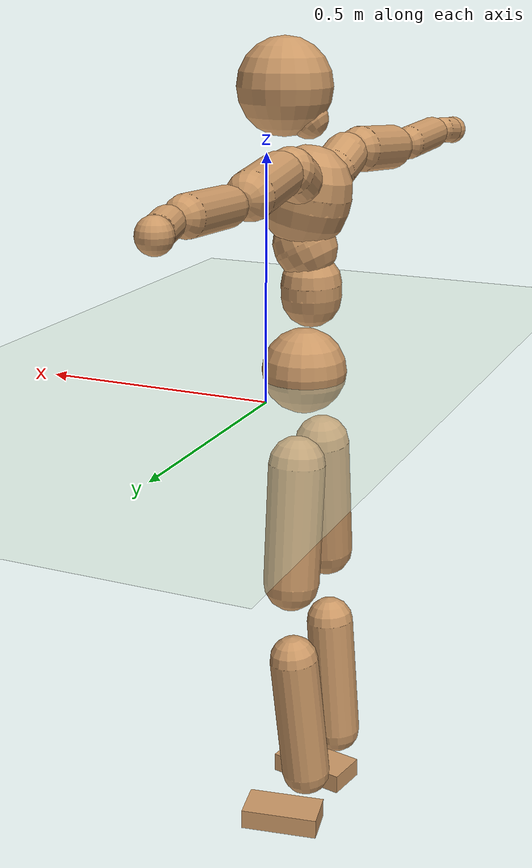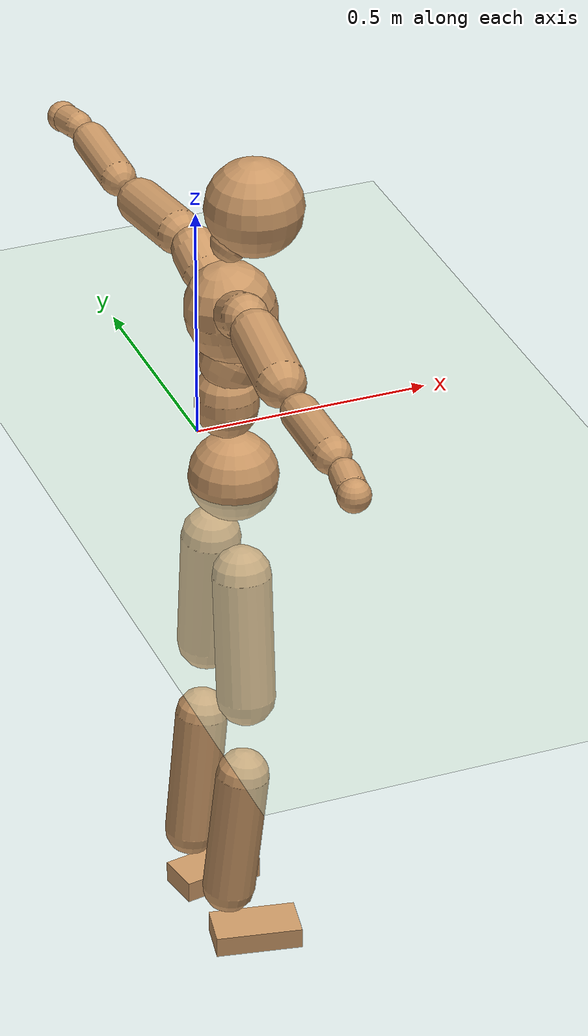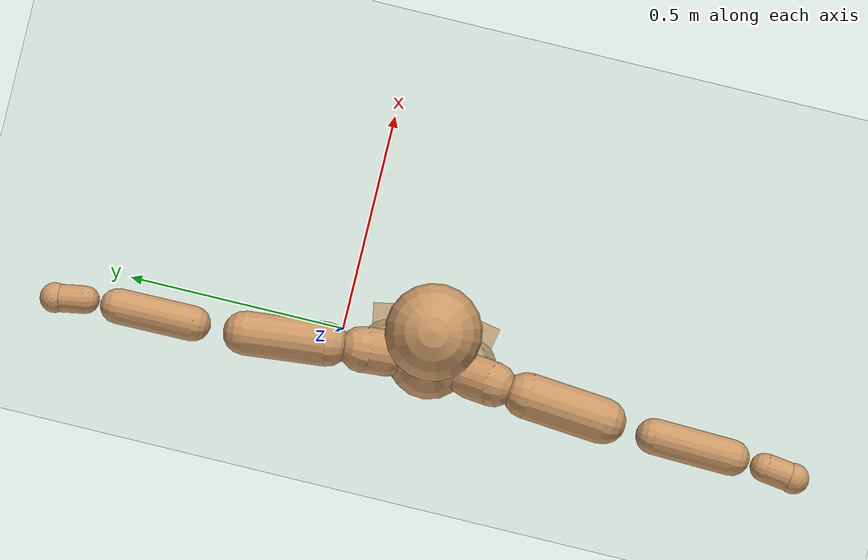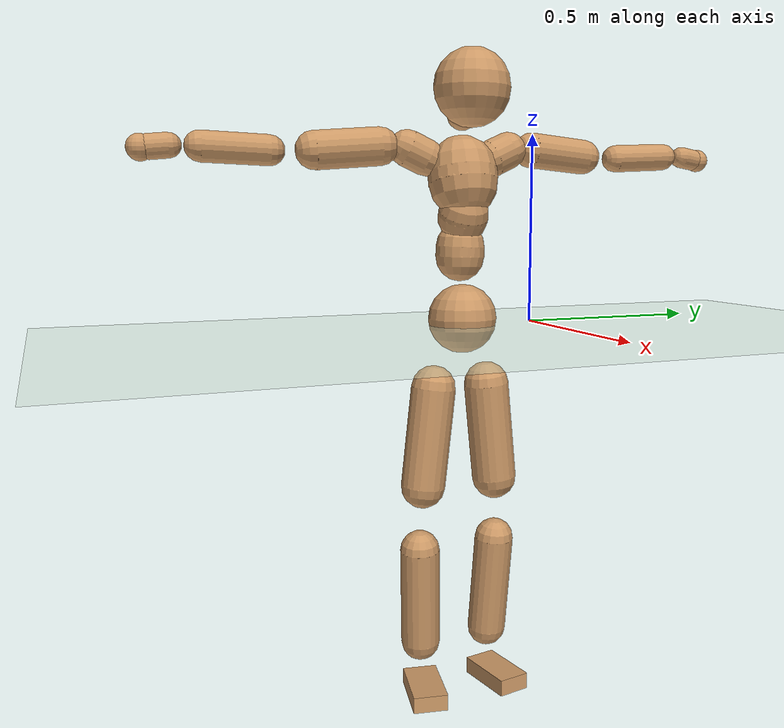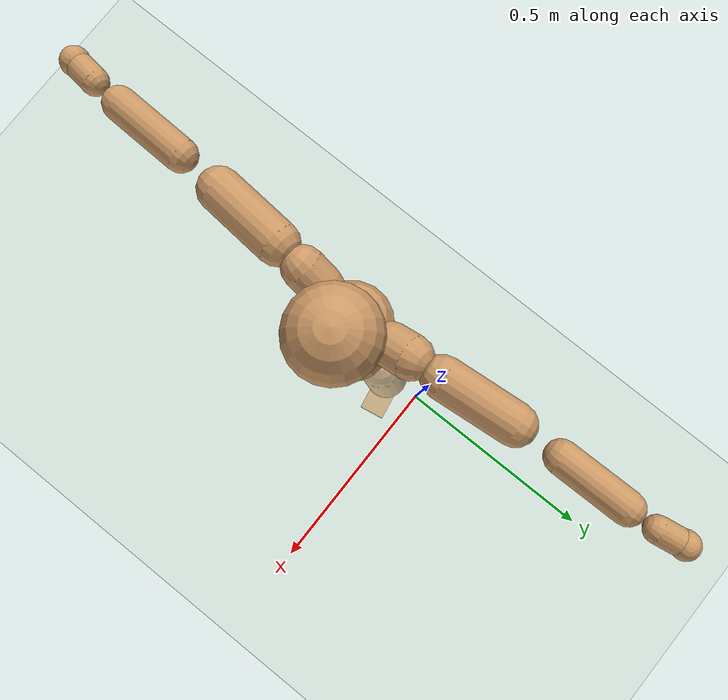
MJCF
<mujoco model="humanoid">
  <compiler coordinate="local" angle="radian"/>
  <default>
    <joint damping="0.0" armature="0.01" stiffness="0.0" limited="true"/>
    <geom conaffinity="1" condim="3" contype="7" margin="0.001" rgba="0.8 0.6 .4 1"/>
  </default>
  <asset>
    <texture type="skybox" builtin="gradient" rgb1=".4 .5 .6" rgb2="0 0 0" width="100" height="100"/>
    <texture builtin="flat" height="1278" mark="cross" markrgb="1 1 1" name="texgeom" random="0.01" rgb1="0.8 0.6 0.4" rgb2="0.8 0.6 0.4" type="cube" width="127"/>
    <texture builtin="checker" height="100" name="texplane" rgb1="0 0 0" rgb2="0.8 0.8 0.8" type="2d" width="100"/>
    <material name="MatPlane" reflectance="0.5" shininess="1" specular="1" texrepeat="60 60" texture="texplane"/>
    <material name="geom" texture="texgeom" texuniform="true"/>
  </asset>
  <worldbody>
    <light cutoff="100" diffuse="1 1 1" dir="-0 0 -1.3" directional="true" exponent="1" pos="0 0 1.3" specular=".1 .1 .1"/>
    <geom conaffinity="1" condim="3" name="floor" pos="0 0 0" rgba="0.8 0.9 0.8 1" size="100 100 .2" type="plane" material="MatPlane"/>
    <body name="Pelvis" pos="-0.0001 -0.2042 0.0146">
      <freejoint name="Pelvis"/>
      <geom type="sphere" contype="1" conaffinity="1" density="500" size="0.0924" pos="0.0000 0.0000 0.0000" name="Pelvis"/>
      <body name="L_Hip" pos="-0.018 0.0717 -0.0968">
        <joint name="L_Hip_x" type="hinge" pos="0 0 0" axis="1 0 0" stiffness="800" damping="80" armature="0.02" range="-180.0000 180.0000"/>
        <joint name="L_Hip_y" type="hinge" pos="0 0 0" axis="0 1 0" stiffness="800" damping="80" armature="0.02" range="-180.0000 180.0000"/>
        <joint name="L_Hip_z" type="hinge" pos="0 0 0" axis="0 0 1" stiffness="800" damping="80" armature="0.02" range="-180.0000 180.0000"/>
        <geom type="capsule" contype="1" conaffinity="1" density="500" fromto="-0.0002 0.0088 -0.0898 -0.0008 0.0352 -0.3591" size="0.0619" name="L_Hip"/>
        <body name="L_Knee" pos="-0.001 0.044 -0.4489">
          <joint name="L_Knee_x" type="hinge" pos="0 0 0" axis="1 0 0" stiffness="800" damping="80" armature="0.02" range="-180.0000 180.0000"/>
          <joint name="L_Knee_y" type="hinge" pos="0 0 0" axis="0 1 0" stiffness="800" damping="80" armature="0.02" range="-180.0000 180.0000"/>
          <joint name="L_Knee_z" type="hinge" pos="0 0 0" axis="0 0 1" stiffness="800" damping="80" armature="0.02" range="-180.0000 180.0000"/>
          <geom type="capsule" contype="1" conaffinity="1" density="500" fromto="-0.0098 -0.0027 -0.0949 -0.0392 -0.0108 -0.3797" size="0.0547" name="L_Knee"/>
          <body name="L_Ankle" pos="-0.0491 -0.0135 -0.4746">
            <joint name="L_Ankle_x" type="hinge" pos="0 0 0" axis="1 0 0" stiffness="800" damping="80" armature="0.02" range="-180.0000 180.0000"/>
            <joint name="L_Ankle_y" type="hinge" pos="0 0 0" axis="0 1 0" stiffness="800" damping="80" armature="0.02" range="-180.0000 180.0000"/>
            <joint name="L_Ankle_z" type="hinge" pos="0 0 0" axis="0 0 1" stiffness="800" damping="80" armature="0.02" range="-180.0000 180.0000"/>
            <geom type="box" contype="1" conaffinity="1" density="500" pos="0.0635 0.0115 -0.0323" size="0.0881 0.0456 0.0232" quat="0.9960 0.0000 0.0000 0.0891" name="L_Ankle"/>
            <body name="L_Toe" pos="0.127 0.0229 -0.0646">
              <joint name="L_Toe_x" type="hinge" pos="0 0 0" axis="1 0 0" stiffness="500" damping="50" armature="0.02" range="-180.0000 180.0000"/>
              <joint name="L_Toe_y" type="hinge" pos="0 0 0" axis="0 1 0" stiffness="500" damping="50" armature="0.02" range="-180.0000 180.0000"/>
              <joint name="L_Toe_z" type="hinge" pos="0 0 0" axis="0 0 1" stiffness="500" damping="50" armature="0.02" range="-180.0000 180.0000"/>
              <geom type="box" contype="1" conaffinity="1" density="500" pos="0.0000 0.0000 0.0318" size="0.0009 0.0023 0.0011" quat="0.9955 0.0000 0.0000 0.0952" name="L_Toe"/>
            </body>
          </body>
        </body>
      </body>
      <body name="R_Hip" pos="-0.0125 -0.0688 -0.0952">
        <joint name="R_Hip_x" type="hinge" pos="0 0 0" axis="1 0 0" stiffness="800" damping="80" armature="0.02" range="-180.0000 180.0000"/>
        <joint name="R_Hip_y" type="hinge" pos="0 0 0" axis="0 1 0" stiffness="800" damping="80" armature="0.02" range="-180.0000 180.0000"/>
        <joint name="R_Hip_z" type="hinge" pos="0 0 0" axis="0 0 1" stiffness="800" damping="80" armature="0.02" range="-180.0000 180.0000"/>
        <geom type="capsule" contype="1" conaffinity="1" density="500" fromto="-0.0009 -0.0103 -0.0914 -0.0038 -0.0410 -0.3655" size="0.0609" name="R_Hip"/>
        <body name="R_Knee" pos="-0.0047 -0.0513 -0.4569">
          <joint name="R_Knee_x" type="hinge" pos="0 0 0" axis="1 0 0" stiffness="800" damping="80" armature="0.02" range="-180.0000 180.0000"/>
          <joint name="R_Knee_y" type="hinge" pos="0 0 0" axis="0 1 0" stiffness="800" damping="80" armature="0.02" range="-180.0000 180.0000"/>
          <joint name="R_Knee_z" type="hinge" pos="0 0 0" axis="0 0 1" stiffness="800" damping="80" armature="0.02" range="-180.0000 180.0000"/>
          <geom type="capsule" contype="1" conaffinity="1" density="500" fromto="-0.0091 0.0037 -0.0949 -0.0365 0.0146 -0.3794" size="0.055" name="R_Knee"/>
          <body name="R_Ankle" pos="-0.0457 0.0183 -0.4743">
            <joint name="R_Ankle_x" type="hinge" pos="0 0 0" axis="1 0 0" stiffness="800" damping="80" armature="0.02" range="-180.0000 180.0000"/>
            <joint name="R_Ankle_y" type="hinge" pos="0 0 0" axis="0 1 0" stiffness="800" damping="80" armature="0.02" range="-180.0000 180.0000"/>
            <joint name="R_Ankle_z" type="hinge" pos="0 0 0" axis="0 0 1" stiffness="800" damping="80" armature="0.02" range="-180.0000 180.0000"/>
            <geom type="box" contype="1" conaffinity="1" density="500" pos="0.0653 -0.0124 -0.0278" size="0.0908 0.0481 0.0226" quat="0.9956 0.0000 0.0000 -0.0933" name="R_Ankle"/>
            <body name="R_Toe" pos="0.1307 -0.0247 -0.0555">
              <joint name="R_Toe_x" type="hinge" pos="0 0 0" axis="1 0 0" stiffness="500" damping="50" armature="0.02" range="-180.0000 180.0000"/>
              <joint name="R_Toe_y" type="hinge" pos="0 0 0" axis="0 1 0" stiffness="500" damping="50" armature="0.02" range="-180.0000 180.0000"/>
              <joint name="R_Toe_z" type="hinge" pos="0 0 0" axis="0 0 1" stiffness="500" damping="50" armature="0.02" range="-180.0000 180.0000"/>
              <geom type="box" contype="1" conaffinity="1" density="500" pos="0.0000 0.0000 0.0303" size="0.0008 0.0023 0.0013" quat="0.9964 0.0000 0.0000 -0.0847" name="R_Toe"/>
            </body>
          </body>
        </body>
      </body>
      <body name="Torso" pos="-0.0147 -0.0031 0.1095">
        <joint name="Torso_x" type="hinge" pos="0 0 0" axis="1 0 0" stiffness="1000" damping="100" armature="0.02" range="-180.0000 180.0000"/>
        <joint name="Torso_y" type="hinge" pos="0 0 0" axis="0 1 0" stiffness="1000" damping="100" armature="0.02" range="-180.0000 180.0000"/>
        <joint name="Torso_z" type="hinge" pos="0 0 0" axis="0 0 1" stiffness="1000" damping="100" armature="0.02" range="-180.0000 180.0000"/>
        <geom type="capsule" contype="1" conaffinity="1" density="500" fromto="0.0010 0.0024 0.0821 0.0007 0.0016 0.0547" size="0.0651" name="Torso"/>
        <body name="Spine" pos="0.0016 0.004 0.1369">
          <joint name="Spine_x" type="hinge" pos="0 0 0" axis="1 0 0" stiffness="1000" damping="100" armature="0.02" range="-180.0000 180.0000"/>
          <joint name="Spine_y" type="hinge" pos="0 0 0" axis="0 1 0" stiffness="1000" damping="100" armature="0.02" range="-180.0000 180.0000"/>
          <joint name="Spine_z" type="hinge" pos="0 0 0" axis="0 0 1" stiffness="1000" damping="100" armature="0.02" range="-180.0000 180.0000"/>
          <geom type="capsule" contype="1" conaffinity="1" density="500" fromto="0.0162 0.0008 0.0311 0.0108 0.0005 0.0207" size="0.0666" name="Spine"/>
          <body name="Chest" pos="0.027 0.0014 0.0518">
            <joint name="Chest_x" type="hinge" pos="0 0 0" axis="1 0 0" stiffness="1000" damping="100" armature="0.02" range="-180.0000 180.0000"/>
            <joint name="Chest_y" type="hinge" pos="0 0 0" axis="0 1 0" stiffness="1000" damping="100" armature="0.02" range="-180.0000 180.0000"/>
            <joint name="Chest_z" type="hinge" pos="0 0 0" axis="0 0 1" stiffness="1000" damping="100" armature="0.02" range="-180.0000 180.0000"/>
            <geom type="capsule" contype="1" conaffinity="1" density="500" fromto="-0.0204 -0.0011 0.0894 -0.0136 -0.0007 0.0596" size="0.0922" name="Chest"/>
            <body name="Neck" pos="-0.0306 -0.0035 0.2164">
              <joint name="Neck_x" type="hinge" pos="0 0 0" axis="1 0 0" stiffness="500" damping="50" armature="0.02" range="-180.0000 180.0000"/>
              <joint name="Neck_y" type="hinge" pos="0 0 0" axis="0 1 0" stiffness="500" damping="50" armature="0.02" range="-180.0000 180.0000"/>
              <joint name="Neck_z" type="hinge" pos="0 0 0" axis="0 0 1" stiffness="500" damping="50" armature="0.02" range="-180.0000 180.0000"/>
              <geom type="capsule" contype="1" conaffinity="1" density="500" fromto="0.0127 0.0014 0.0157 0.0509 0.0057 0.0627" size="0.0406" name="Neck"/>
              <body name="Head" pos="0.0637 0.0071 0.0783">
                <joint name="Head_x" type="hinge" pos="0 0 0" axis="1 0 0" stiffness="500" damping="50" armature="0.02" range="-180.0000 180.0000"/>
                <joint name="Head_y" type="hinge" pos="0 0 0" axis="0 1 0" stiffness="500" damping="50" armature="0.02" range="-180.0000 180.0000"/>
                <joint name="Head_z" type="hinge" pos="0 0 0" axis="0 0 1" stiffness="500" damping="50" armature="0.02" range="-180.0000 180.0000"/>
                <geom type="sphere" contype="1" conaffinity="1" density="500" size="0.0997" pos="0.0000 0.0000 0.0000" name="Head"/>
              </body>
            </body>
            <body name="L_Thorax" pos="-0.0329 0.0749 0.1164">
              <joint name="L_Thorax_x" type="hinge" pos="0 0 0" axis="1 0 0" stiffness="500" damping="50" armature="0.02" range="-180.0000 180.0000"/>
              <joint name="L_Thorax_y" type="hinge" pos="0 0 0" axis="0 1 0" stiffness="500" damping="50" armature="0.02" range="-180.0000 180.0000"/>
              <joint name="L_Thorax_z" type="hinge" pos="0 0 0" axis="0 0 1" stiffness="500" damping="50" armature="0.02" range="-180.0000 180.0000"/>
              <geom type="capsule" contype="1" conaffinity="1" density="500" fromto="-0.0013 0.0162 0.0073 -0.0050 0.0647 0.0293" size="0.049" name="L_Thorax"/>
              <body name="L_Shoulder" pos="-0.0063 0.0809 0.0366">
                <joint name="L_Shoulder_x" type="hinge" pos="0 0 0" axis="1 0 0" stiffness="500" damping="50" armature="0.02" range="-720.0000 720.0000"/>
                <joint name="L_Shoulder_y" type="hinge" pos="0 0 0" axis="0 1 0" stiffness="500" damping="50" armature="0.02" range="-720.0000 720.0000"/>
                <joint name="L_Shoulder_z" type="hinge" pos="0 0 0" axis="0 0 1" stiffness="500" damping="50" armature="0.02" range="-720.0000 720.0000"/>
                <geom type="capsule" contype="1" conaffinity="1" density="500" fromto="-0.0060 0.0576 -0.0044 -0.0240 0.2303 -0.0177" size="0.047" name="L_Shoulder"/>
                <body name="L_Elbow" pos="-0.03 0.2879 -0.0221">
                  <joint name="L_Elbow_x" type="hinge" pos="0 0 0" axis="1 0 0" stiffness="500" damping="50" armature="0.02" range="-720.0000 720.0000"/>
                  <joint name="L_Elbow_y" type="hinge" pos="0 0 0" axis="0 1 0" stiffness="500" damping="50" armature="0.02" range="-720.0000 720.0000"/>
                  <joint name="L_Elbow_z" type="hinge" pos="0 0 0" axis="0 0 1" stiffness="500" damping="50" armature="0.02" range="-720.0000 720.0000"/>
                  <geom type="capsule" contype="1" conaffinity="1" density="500" fromto="-0.0005 0.0535 0.0027 -0.0018 0.2140 0.0107" size="0.0374" name="L_Elbow"/>
                  <body name="L_Wrist" pos="-0.0023 0.2675 0.0134">
                    <joint name="L_Wrist_x" type="hinge" pos="0 0 0" axis="1 0 0" stiffness="300" damping="30" armature="0.02" range="-180.0000 180.0000"/>
                    <joint name="L_Wrist_y" type="hinge" pos="0 0 0" axis="0 1 0" stiffness="300" damping="30" armature="0.02" range="-180.0000 180.0000"/>
                    <joint name="L_Wrist_z" type="hinge" pos="0 0 0" axis="0 0 1" stiffness="300" damping="30" armature="0.02" range="-180.0000 180.0000"/>
                    <geom type="capsule" contype="1" conaffinity="1" density="500" fromto="-0.0027 0.0160 -0.0020 -0.0110 0.0640 -0.0081" size="0.0297" name="L_Wrist"/>
                    <body name="L_Hand" pos="-0.0137 0.08 -0.0101">
                      <joint name="L_Hand_x" type="hinge" pos="0 0 0" axis="1 0 0" stiffness="300" damping="30" armature="0.02" range="-180.0000 180.0000"/>
                      <joint name="L_Hand_y" type="hinge" pos="0 0 0" axis="0 1 0" stiffness="300" damping="30" armature="0.02" range="-180.0000 180.0000"/>
                      <joint name="L_Hand_z" type="hinge" pos="0 0 0" axis="0 0 1" stiffness="300" damping="30" armature="0.02" range="-180.0000 180.0000"/>
                      <geom type="sphere" contype="1" conaffinity="1" density="500" size="0.0321" pos="0.0000 0.0000 0.0000" name="L_Hand"/>
                    </body>
                  </body>
                </body>
              </body>
            </body>
            <body name="R_Thorax" pos="-0.0384 -0.077 0.1143">
              <joint name="R_Thorax_x" type="hinge" pos="0 0 0" axis="1 0 0" stiffness="500" damping="50" armature="0.02" range="-180.0000 180.0000"/>
              <joint name="R_Thorax_y" type="hinge" pos="0 0 0" axis="0 1 0" stiffness="500" damping="50" armature="0.02" range="-180.0000 180.0000"/>
              <joint name="R_Thorax_z" type="hinge" pos="0 0 0" axis="0 0 1" stiffness="500" damping="50" armature="0.02" range="-180.0000 180.0000"/>
              <geom type="capsule" contype="1" conaffinity="1" density="500" fromto="-0.0015 -0.0170 0.0078 -0.0061 -0.0679 0.0313" size="0.0478" name="R_Thorax"/>
              <body name="R_Shoulder" pos="-0.0076 -0.0848 0.0391">
                <joint name="R_Shoulder_x" type="hinge" pos="0 0 0" axis="1 0 0" stiffness="500" damping="50" armature="0.02" range="-720.0000 720.0000"/>
                <joint name="R_Shoulder_y" type="hinge" pos="0 0 0" axis="0 1 0" stiffness="500" damping="50" armature="0.02" range="-720.0000 720.0000"/>
                <joint name="R_Shoulder_z" type="hinge" pos="0 0 0" axis="0 0 1" stiffness="500" damping="50" armature="0.02" range="-720.0000 720.0000"/>
                <geom type="capsule" contype="1" conaffinity="1" density="500" fromto="-0.0048 -0.0558 -0.0044 -0.0190 -0.2233 -0.0175" size="0.0494" name="R_Shoulder"/>
                <body name="R_Elbow" pos="-0.0238 -0.2792 -0.0218">
                  <joint name="R_Elbow_x" type="hinge" pos="0 0 0" axis="1 0 0" stiffness="500" damping="50" armature="0.02" range="-720.0000 720.0000"/>
                  <joint name="R_Elbow_y" type="hinge" pos="0 0 0" axis="0 1 0" stiffness="500" damping="50" armature="0.02" range="-720.0000 720.0000"/>
                  <joint name="R_Elbow_z" type="hinge" pos="0 0 0" axis="0 0 1" stiffness="500" damping="50" armature="0.02" range="-720.0000 720.0000"/>
                  <geom type="capsule" contype="1" conaffinity="1" density="500" fromto="-0.0015 -0.0559 0.0019 -0.0061 -0.2236 0.0077" size="0.0383" name="R_Elbow"/>
                  <body name="R_Wrist" pos="-0.0077 -0.2795 0.0096">
                    <joint name="R_Wrist_x" type="hinge" pos="0 0 0" axis="1 0 0" stiffness="300" damping="30" armature="0.02" range="-180.0000 180.0000"/>
                    <joint name="R_Wrist_y" type="hinge" pos="0 0 0" axis="0 1 0" stiffness="300" damping="30" armature="0.02" range="-180.0000 180.0000"/>
                    <joint name="R_Wrist_z" type="hinge" pos="0 0 0" axis="0 0 1" stiffness="300" damping="30" armature="0.02" range="-180.0000 180.0000"/>
                    <geom type="capsule" contype="1" conaffinity="1" density="500" fromto="-0.0021 -0.0164 -0.0015 -0.0085 -0.0655 -0.0060" size="0.0308" name="R_Wrist"/>
                    <body name="R_Hand" pos="-0.0106 -0.0818 -0.0075">
                      <joint name="R_Hand_x" type="hinge" pos="0 0 0" axis="1 0 0" stiffness="300" damping="30" armature="0.02" range="-180.0000 180.0000"/>
                      <joint name="R_Hand_y" type="hinge" pos="0 0 0" axis="0 1 0" stiffness="300" damping="30" armature="0.02" range="-180.0000 180.0000"/>
                      <joint name="R_Hand_z" type="hinge" pos="0 0 0" axis="0 0 1" stiffness="300" damping="30" armature="0.02" range="-180.0000 180.0000"/>
                      <geom type="sphere" contype="1" conaffinity="1" density="500" size="0.0327" pos="0.0000 0.0000 0.0000" name="R_Hand"/>
                    </body>
                  </body>
                </body>
              </body>
            </body>
          </body>
        </body>
      </body>
    </body>
  </worldbody>
  <actuator>
    <motor name="L_Hip_x" joint="L_Hip_x" gear="500"/>
    <motor name="L_Hip_y" joint="L_Hip_y" gear="500"/>
    <motor name="L_Hip_z" joint="L_Hip_z" gear="500"/>
    <motor name="L_Knee_x" joint="L_Knee_x" gear="500"/>
    <motor name="L_Knee_y" joint="L_Knee_y" gear="500"/>
    <motor name="L_Knee_z" joint="L_Knee_z" gear="500"/>
    <motor name="L_Ankle_x" joint="L_Ankle_x" gear="500"/>
    <motor name="L_Ankle_y" joint="L_Ankle_y" gear="500"/>
    <motor name="L_Ankle_z" joint="L_Ankle_z" gear="500"/>
    <motor name="L_Toe_x" joint="L_Toe_x" gear="500"/>
    <motor name="L_Toe_y" joint="L_Toe_y" gear="500"/>
    <motor name="L_Toe_z" joint="L_Toe_z" gear="500"/>
    <motor name="R_Hip_x" joint="R_Hip_x" gear="500"/>
    <motor name="R_Hip_y" joint="R_Hip_y" gear="500"/>
    <motor name="R_Hip_z" joint="R_Hip_z" gear="500"/>
    <motor name="R_Knee_x" joint="R_Knee_x" gear="500"/>
    <motor name="R_Knee_y" joint="R_Knee_y" gear="500"/>
    <motor name="R_Knee_z" joint="R_Knee_z" gear="500"/>
    <motor name="R_Ankle_x" joint="R_Ankle_x" gear="500"/>
    <motor name="R_Ankle_y" joint="R_Ankle_y" gear="500"/>
    <motor name="R_Ankle_z" joint="R_Ankle_z" gear="500"/>
    <motor name="R_Toe_x" joint="R_Toe_x" gear="500"/>
    <motor name="R_Toe_y" joint="R_Toe_y" gear="500"/>
    <motor name="R_Toe_z" joint="R_Toe_z" gear="500"/>
    <motor name="Torso_x" joint="Torso_x" gear="500"/>
    <motor name="Torso_y" joint="Torso_y" gear="500"/>
    <motor name="Torso_z" joint="Torso_z" gear="500"/>
    <motor name="Spine_x" joint="Spine_x" gear="500"/>
    <motor name="Spine_y" joint="Spine_y" gear="500"/>
    <motor name="Spine_z" joint="Spine_z" gear="500"/>
    <motor name="Chest_x" joint="Chest_x" gear="500"/>
    <motor name="Chest_y" joint="Chest_y" gear="500"/>
    <motor name="Chest_z" joint="Chest_z" gear="500"/>
    <motor name="Neck_x" joint="Neck_x" gear="500"/>
    <motor name="Neck_y" joint="Neck_y" gear="500"/>
    <motor name="Neck_z" joint="Neck_z" gear="500"/>
    <motor name="Head_x" joint="Head_x" gear="500"/>
    <motor name="Head_y" joint="Head_y" gear="500"/>
    <motor name="Head_z" joint="Head_z" gear="500"/>
    <motor name="L_Thorax_x" joint="L_Thorax_x" gear="500"/>
    <motor name="L_Thorax_y" joint="L_Thorax_y" gear="500"/>
    <motor name="L_Thorax_z" joint="L_Thorax_z" gear="500"/>
    <motor name="L_Shoulder_x" joint="L_Shoulder_x" gear="500"/>
    <motor name="L_Shoulder_y" joint="L_Shoulder_y" gear="500"/>
    <motor name="L_Shoulder_z" joint="L_Shoulder_z" gear="500"/>
    <motor name="L_Elbow_x" joint="L_Elbow_x" gear="500"/>
    <motor name="L_Elbow_y" joint="L_Elbow_y" gear="500"/>
    <motor name="L_Elbow_z" joint="L_Elbow_z" gear="500"/>
    <motor name="L_Wrist_x" joint="L_Wrist_x" gear="500"/>
    <motor name="L_Wrist_y" joint="L_Wrist_y" gear="500"/>
    <motor name="L_Wrist_z" joint="L_Wrist_z" gear="500"/>
    <motor name="L_Hand_x" joint="L_Hand_x" gear="500"/>
    <motor name="L_Hand_y" joint="L_Hand_y" gear="500"/>
    <motor name="L_Hand_z" joint="L_Hand_z" gear="500"/>
    <motor name="R_Thorax_x" joint="R_Thorax_x" gear="500"/>
    <motor name="R_Thorax_y" joint="R_Thorax_y" gear="500"/>
    <motor name="R_Thorax_z" joint="R_Thorax_z" gear="500"/>
    <motor name="R_Shoulder_x" joint="R_Shoulder_x" gear="500"/>
    <motor name="R_Shoulder_y" joint="R_Shoulder_y" gear="500"/>
    <motor name="R_Shoulder_z" joint="R_Shoulder_z" gear="500"/>
    <motor name="R_Elbow_x" joint="R_Elbow_x" gear="500"/>
    <motor name="R_Elbow_y" joint="R_Elbow_y" gear="500"/>
    <motor name="R_Elbow_z" joint="R_Elbow_z" gear="500"/>
    <motor name="R_Wrist_x" joint="R_Wrist_x" gear="500"/>
    <motor name="R_Wrist_y" joint="R_Wrist_y" gear="500"/>
    <motor name="R_Wrist_z" joint="R_Wrist_z" gear="500"/>
    <motor name="R_Hand_x" joint="R_Hand_x" gear="500"/>
    <motor name="R_Hand_y" joint="R_Hand_y" gear="500"/>
    <motor name="R_Hand_z" joint="R_Hand_z" gear="500"/>
  </actuator>
  <contact>
    <exclude body1="Torso" body2="Chest"/>
    <exclude body1="Head" body2="Chest"/>
    <exclude body1="R_Knee" body2="R_Toe"/>
    <exclude body1="R_Knee" body2="L_Ankle"/>
    <exclude body1="R_Knee" body2="L_Toe"/>
    <exclude body1="L_Knee" body2="L_Toe"/>
    <exclude body1="L_Knee" body2="R_Ankle"/>
    <exclude body1="L_Knee" body2="R_Toe"/>
    <exclude body1="L_Shoulder" body2="Chest"/>
    <exclude body1="R_Shoulder" body2="Chest"/>
  </contact>
  <sensor/>
  <size njmax="700" nconmax="700"/>
</mujoco>
